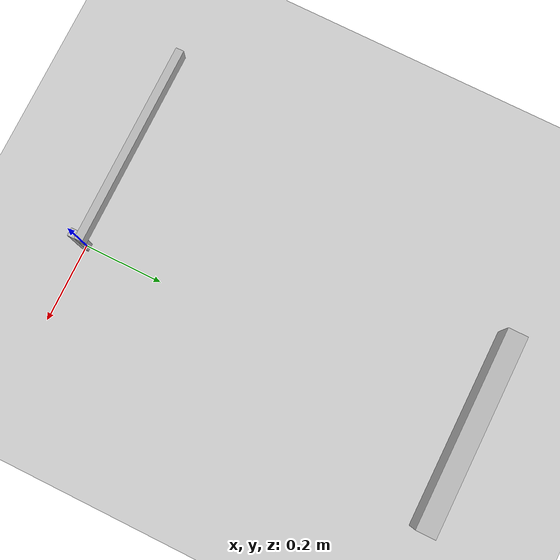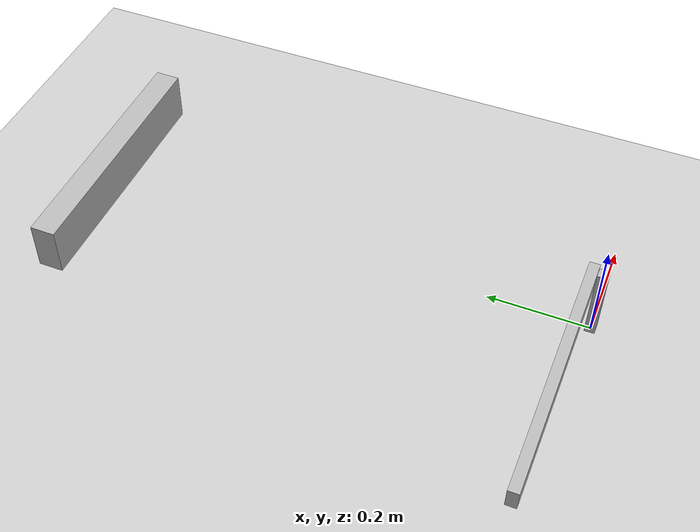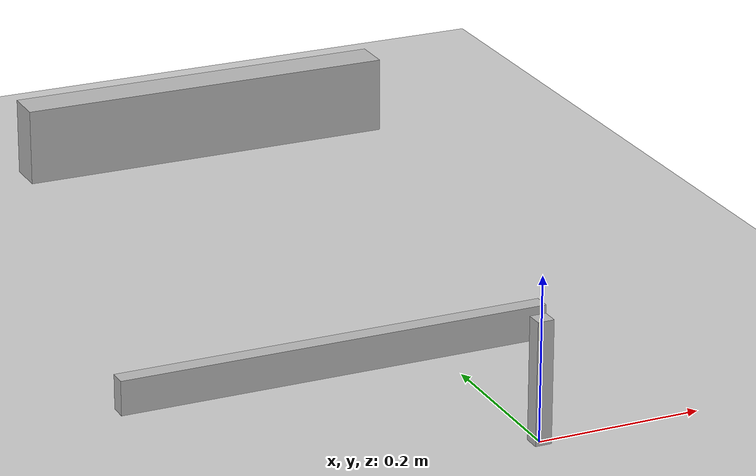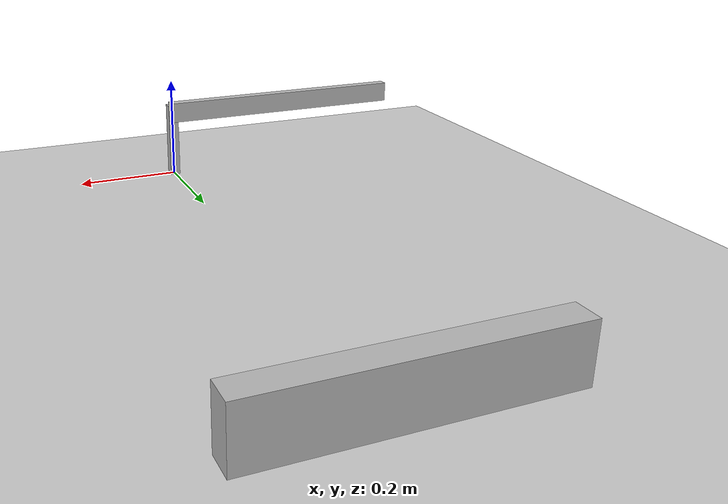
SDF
<?xml version="1.0" ?>
<sdf version="1.5">
    <world name="world">

        <include>
            <uri>model://sun</uri>
        </include>

        <include>
            <uri>model://ground_plane</uri>
        </include>

        <plugin filename="libSimEventsPlugin.so" name="elevator_event_plugin">
            <region>
                <name>first_block</name>
                <volume>
                    <min>0.25 -0.5 0.0</min>
                    <max>-0.25 -0.55 0.1</max>
                </volume>
            </region>
            <region>
                <name>second_block</name>
                <volume>
                    <min>0.25 0.5 0.0</min>
                    <max>-0.25 0.55 0.1</max>
                </volume>
            </region>
            <event>
                <name>first_block_event</name>
                <type>occupied</type>
                <region>first_block</region>
                <topic>~/blockingbar</topic>
                <msg_data>1</msg_data>
            </event>

            <!-- Event publisher for second floor-->
            <event>
                <name>second_block_event</name>
                <type>occupied</type>
                <region>second_block</region>
                <topic>~/blockingbar</topic>
                <msg_data>-1</msg_data>
            </event>
        </plugin>

        <model name="box">
            <pose>0 1 0.05 0 0 0</pose>
            <link name="box">
                <collision name="box_collision">
                    <geometry>
                        <box>
                            <size>0.5 0.05 0.1</size>
                        </box>
                    </geometry>
                </collision>
                <visual name="box_visual">
                    <geometry>
                        <box>
                            <size>0.5 0.05 0.1</size>
                        </box>
                    </geometry>
                </visual>
            </link>
        </model>

        <model name="bar">
            <link name="bar">
                <pose>0 0 0.075 0 0 0</pose>
                <collision name="bar_collision">
                    <geometry>
                        <box>
                            <size>0.02 0.02 0.15</size>
                        </box>
                    </geometry>
                </collision>
                <visual name="bar_visual">
                    <geometry>
                        <box>
                            <size>0.02 0.02 0.15</size>
                        </box>
                    </geometry>
                </visual>
            </link>
            <link name="blocking_bar">
                <pose>-0.24 0.02 0.14 0 0 0</pose>
                <collision name="blocking_bar_collision">
                    <geometry>
                        <box>
                            <size>0.5 0.02 0.04</size>
                        </box>
                    </geometry>
                </collision>
                <visual name="blocking_bar_visual">
                    <geometry>
                        <box>
                            <size>0.5 0.02 0.04</size>
                        </box>
                    </geometry>
                    <material>
                        <script>
                            <name>blocking</name>
                            <uri>file:///home/patrick/BlockBar/image/blocking.material</uri>
                        </script>
                    </material>
                </visual>
            </link>
            <joint name="fixed" type="fixed">
                <pose>0 0 -0.075 0 0 0</pose>
                <parent>world</parent>
                <child>bar</child>
                <axis>
                    <xyz>0 0 0</xyz>
                </axis>
            </joint>
            <joint name="blocking_bar_joint" type="revolute">
                <parent>bar</parent>
                <child>blocking_bar</child>
                <pose>0.25 0 0 0 0 0</pose>
                <axis>
                    <xyz>0 1 0</xyz>
                    <limit>
                        <lower>0</lower>
                        <upper>1.57</upper>
                    </limit>
                </axis>
            </joint>
            <plugin name="BlockingBar" filename="/home/patrick/BlockBar/build/libblocking.so">
            </plugin>
        </model>
    </world>
</sdf>
